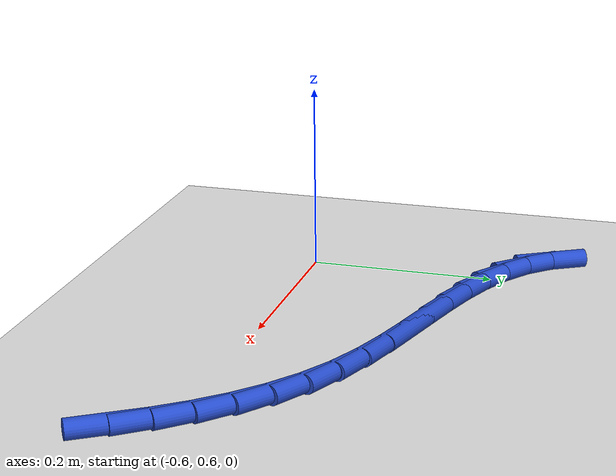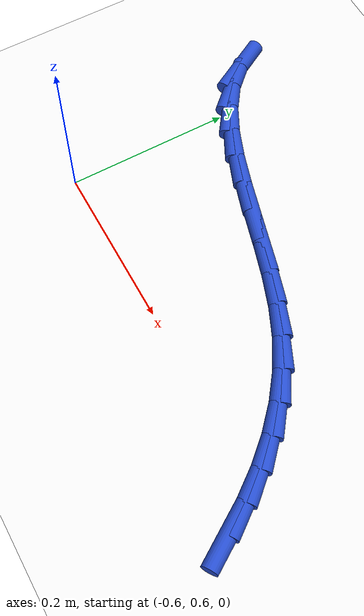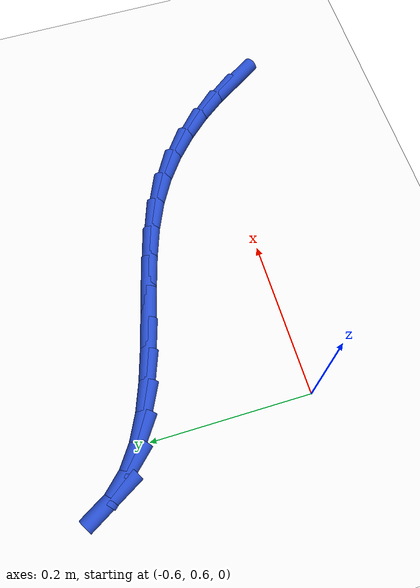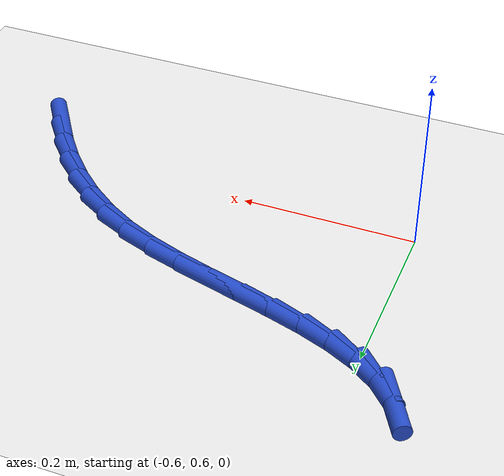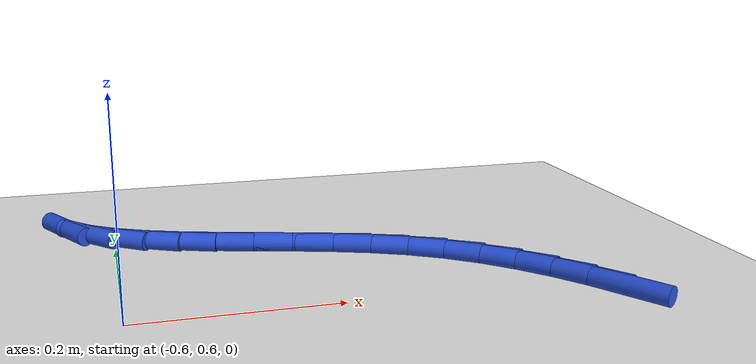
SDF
<sdf version="1.6">
 <world name="default">
  <model name="ground_plane">
   <static>1</static>
   <link name="link">
    <collision name="collision">
     <geometry><plane><normal>0 0 1</normal><size>100 100</size></plane></geometry>
     <surface><friction><ode><mu>100</mu><mu2>50</mu2></ode></friction></surface>
    </collision>
    <visual name="visual">
     <cast_shadows>0</cast_shadows>
     <geometry><plane><normal>0 0 1</normal><size>100 100</size></plane></geometry>
     <material>
      <script><uri>file://media/materials/scripts/gazebo.material</uri><name>Gazebo/WhiteGlow</name></script>
     </material>
    </visual>
   </link>
  </model>
  <model name="line">
   <link name="link_15">
    <pose>-0.14297519809603929 0.5496075566771841 0.01 0 1.57 -1.0033041421238134</pose>
    <collision name="collision">
     <geometry><cylinder><radius>0.01</radius><length>0.08</length></cylinder></geometry>
    </collision>
    <visual name="visual">
     <material>
      <script><name>Gazebo/Blue</name><uri>file://media/materials/scripts/gazebo.material</uri></script>
     </material>
     <geometry><cylinder><radius>0.01</radius><length>0.08</length></cylinder></geometry>
    </visual>
   </link>
   <link name="link_16">
    <pose>-0.1634787720433791 0.5817732500248217 0.01 0 1.57 -0.9275790790610703</pose>
    <collision name="collision">
     <geometry><cylinder><radius>0.01</radius><length>0.08</length></cylinder></geometry>
    </collision>
    <visual name="visual">
     <material>
      <script><name>Gazebo/Blue</name><uri>file://media/materials/scripts/gazebo.material</uri></script>
     </material>
     <geometry><cylinder><radius>0.01</radius><length>0.08</length></cylinder></geometry>
    </visual>
   </link>
   <link name="link_17">
    <pose>-0.18614819813126682 0.6120170331528866 0.01 0 1.57 -0.8422166240656386</pose>
    <collision name="collision">
     <geometry><cylinder><radius>0.01</radius><length>0.08</length></cylinder></geometry>
    </collision>
    <visual name="visual">
     <material>
      <script><name>Gazebo/Blue</name><uri>file://media/materials/scripts/gazebo.material</uri></script>
     </material>
     <geometry><cylinder><radius>0.01</radius><length>0.08</length></cylinder></geometry>
    </visual>
   </link>
   <link name="link_18">
    <pose>-0.2111603440363632 0.6400461492129671 0.01 0 1.57 -0.7475291605570913</pose>
    <collision name="collision">
     <geometry><cylinder><radius>0.01</radius><length>0.08</length></cylinder></geometry>
    </collision>
    <visual name="visual">
     <material>
      <script><name>Gazebo/Blue</name><uri>file://media/materials/scripts/gazebo.material</uri></script>
     </material>
     <geometry><cylinder><radius>0.01</radius><length>0.08</length></cylinder></geometry>
    </visual>
   </link>
   <link name="link_19">
    <pose>-0.23869207743532894 0.6655678413566518 0.01 0 1.57 -0.644566703357554</pose>
    <collision name="collision">
     <geometry><cylinder><radius>0.01</radius><length>0.08</length></cylinder></geometry>
    </collision>
    <visual name="visual">
     <material>
      <script><name>Gazebo/Blue</name><uri>file://media/materials/scripts/gazebo.material</uri></script>
     </material>
     <geometry><cylinder><radius>0.01</radius><length>0.08</length></cylinder></geometry>
    </visual>
   </link>
   <link name="link_20">
    <pose>-0.26892026600482477 0.6882893527355289 0.01 0 1.57 -0.5352426293206431</pose>
    <collision name="collision">
     <geometry><cylinder><radius>0.01</radius><length>0.08</length></cylinder></geometry>
    </collision>
    <visual name="visual">
     <material>
      <script><name>Gazebo/Blue</name><uri>file://media/materials/scripts/gazebo.material</uri></script>
     </material>
     <geometry><cylinder><radius>0.01</radius><length>0.08</length></cylinder></geometry>
    </visual>
   </link>
   <link name="link_21">
    <pose>-0.3020217774215115 0.707917926501187 0.01 0 1.57 -0.4273907402431438</pose>
    <collision name="collision">
     <geometry><cylinder><radius>0.01</radius><length>0.08</length></cylinder></geometry>
    </collision>
    <visual name="visual">
     <material>
      <script><name>Gazebo/Blue</name><uri>file://media/materials/scripts/gazebo.material</uri></script>
     </material>
     <geometry><cylinder><radius>0.01</radius><length>0.08</length></cylinder></geometry>
    </visual>
   </link>
   <link name="link_22">
    <pose>-0.33802448139929814 0.7243159598901089 0.01 0 1.57 -0.3464352621083043</pose>
    <collision name="collision">
     <geometry><cylinder><radius>0.01</radius><length>0.08</length></cylinder></geometry>
    </collision>
    <visual name="visual">
     <material>
      <script><name>Gazebo/Blue</name><uri>file://media/materials/scripts/gazebo.material</uri></script>
     </material>
     <geometry><cylinder><radius>0.01</radius><length>0.08</length></cylinder></geometry>
    </visual>
   </link>
   <link name="link_23">
    <pose>-0.37622585044728296 0.7381064250340952 0.01 0 1.57 -0.2960136077869675</pose>
    <collision name="collision">
     <geometry><cylinder><radius>0.01</radius><length>0.08</length></cylinder></geometry>
    </collision>
    <visual name="visual">
     <material>
      <script><name>Gazebo/Blue</name><uri>file://media/materials/scripts/gazebo.material</uri></script>
     </material>
     <geometry><cylinder><radius>0.01</radius><length>0.08</length></cylinder></geometry>
    </visual>
   </link>
   <link name="link_24">
    <pose>-0.4156999069195276 0.7501449764700213 0.01 0 1.57 -0.2728352720622941</pose>
    <collision name="collision">
     <geometry><cylinder><radius>0.01</radius><length>0.08</length></cylinder></geometry>
    </collision>
    <visual name="visual">
     <material>
      <script><name>Gazebo/Blue</name><uri>file://media/materials/scripts/gazebo.material</uri></script>
     </material>
     <geometry><cylinder><radius>0.01</radius><length>0.08</length></cylinder></geometry>
    </visual>
   </link>
   <link name="link_25">
    <pose>-0.455520616364132 0.7612873278877661 0.01 0 1.57 -0.275707484339287</pose>
    <collision name="collision">
     <geometry><cylinder><radius>0.01</radius><length>0.08</length></cylinder></geometry>
    </collision>
    <visual name="visual">
     <material>
      <script><name>Gazebo/Blue</name><uri>file://media/materials/scripts/gazebo.material</uri></script>
     </material>
     <geometry><cylinder><radius>0.01</radius><length>0.08</length></cylinder></geometry>
    </visual>
   </link>
   <link name="link_26">
    <pose>-0.49476194432919585 0.7723891929772085 0.01 0 1.57 -0.3058906463517367</pose>
    <collision name="collision">
     <geometry><cylinder><radius>0.01</radius><length>0.08</length></cylinder></geometry>
    </collision>
    <visual name="visual">
     <material>
      <script><name>Gazebo/Blue</name><uri>file://media/materials/scripts/gazebo.material</uri></script>
     </material>
     <geometry><cylinder><radius>0.01</radius><length>0.08</length></cylinder></geometry>
    </visual>
   </link>
   <link name="link_27">
    <pose>-0.5324978563628189 0.7843062854282274 0.01 0 1.57 -0.3674056191721325</pose>
    <collision name="collision">
     <geometry><cylinder><radius>0.01</radius><length>0.08</length></cylinder></geometry>
    </collision>
    <visual name="visual">
     <material>
      <script><name>Gazebo/Blue</name><uri>file://media/materials/scripts/gazebo.material</uri></script>
     </material>
     <geometry><cylinder><radius>0.01</radius><length>0.08</length></cylinder></geometry>
    </visual>
   </link>
   <link name="link_28">
    <pose>-0.5678023180131009 0.7978943189307018 0.01 0 1.57 -0.46717720896954856</pose>
    <collision name="collision">
     <geometry><cylinder><radius>0.01</radius><length>0.08</length></cylinder></geometry>
    </collision>
    <visual name="visual">
     <material>
      <script><name>Gazebo/Blue</name><uri>file://media/materials/scripts/gazebo.material</uri></script>
     </material>
     <geometry><cylinder><radius>0.01</radius><length>0.08</length></cylinder></geometry>
    </visual>
   </link>
   <link name="link_29">
    <pose>-0.5997492948281414 0.8140090071745106 0.01 0 1.57 -0.6139366025843185</pose>
    <collision name="collision">
     <geometry><cylinder><radius>0.01</radius><length>0.08</length></cylinder></geometry>
    </collision>
    <visual name="visual">
     <material>
      <script><name>Gazebo/Blue</name><uri>file://media/materials/scripts/gazebo.material</uri></script>
     </material>
     <geometry><cylinder><radius>0.01</radius><length>0.08</length></cylinder></geometry>
    </visual>
   </link>
   <link name="link_30">
    <pose>-0.627412752356041 0.8335060638495331 0.01 0 1.57 -0.8131299905219594</pose>
    <collision name="collision">
     <geometry><cylinder><radius>0.01</radius><length>0.08</length></cylinder></geometry>
    </collision>
    <visual name="visual">
     <material>
      <script><name>Gazebo/Blue</name><uri>file://media/materials/scripts/gazebo.material</uri></script>
     </material>
     <geometry><cylinder><radius>0.01</radius><length>0.08</length></cylinder></geometry>
    </visual>
   </link>
   <link name="link_31">
    <pose>-0.6498666561448985 0.8572412026456475 0.01 0 1.57 -1.0531341289875311</pose>
    <collision name="collision">
     <geometry><cylinder><radius>0.01</radius><length>0.08</length></cylinder></geometry>
    </collision>
    <visual name="visual">
     <material>
      <script><name>Gazebo/Blue</name><uri>file://media/materials/scripts/gazebo.material</uri></script>
     </material>
     <geometry><cylinder><radius>0.01</radius><length>0.08</length></cylinder></geometry>
    </visual>
   </link>
  </model>
 </world>
</sdf>
